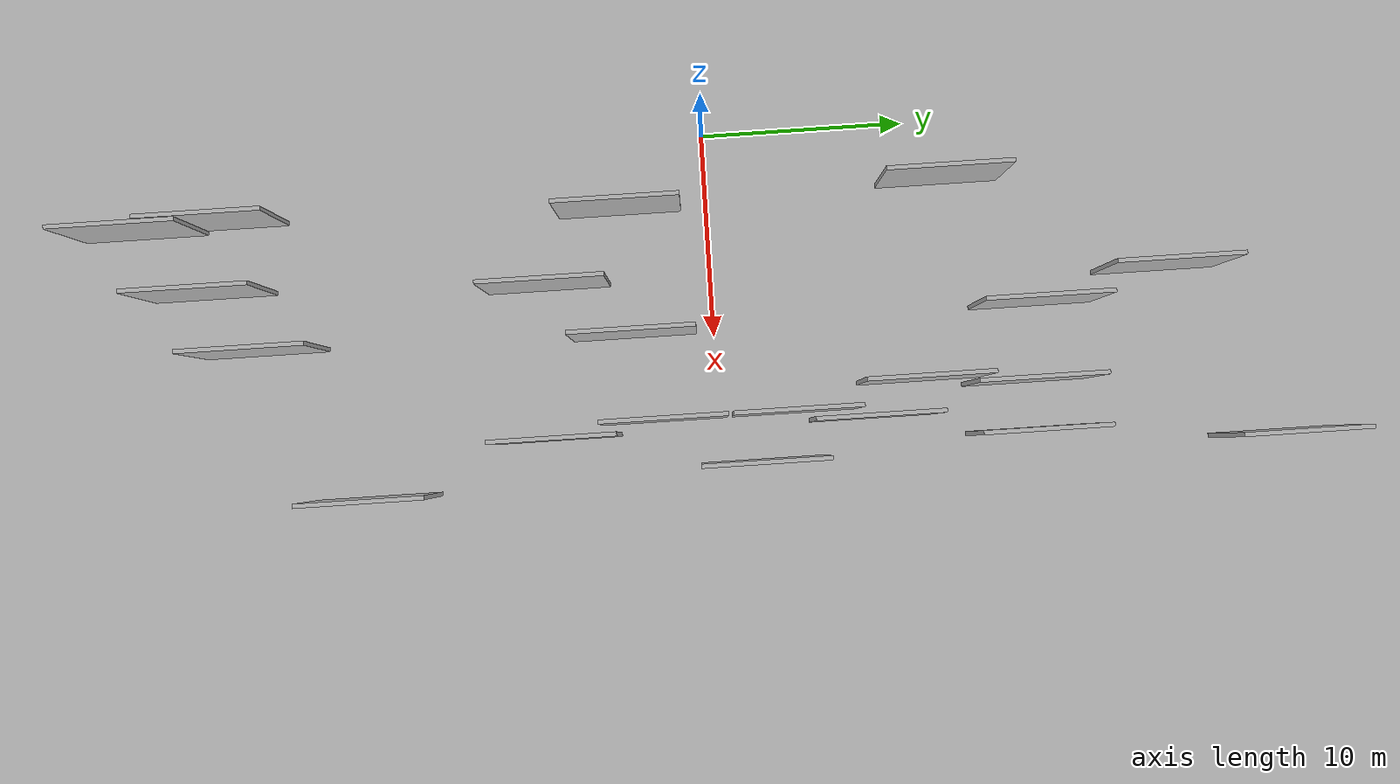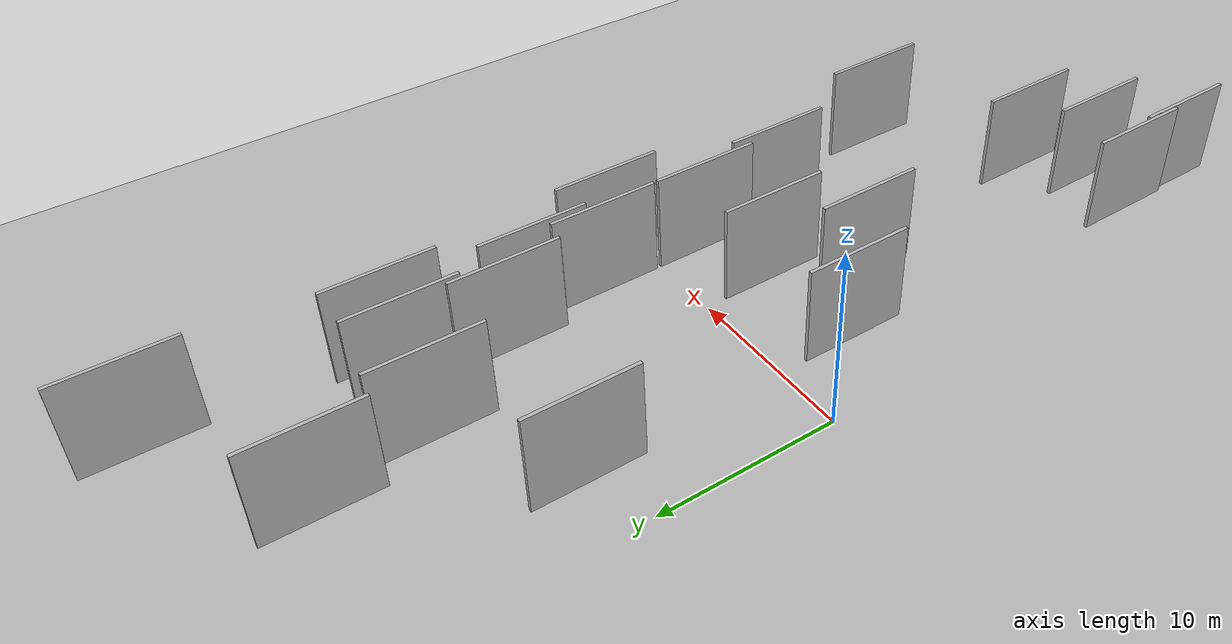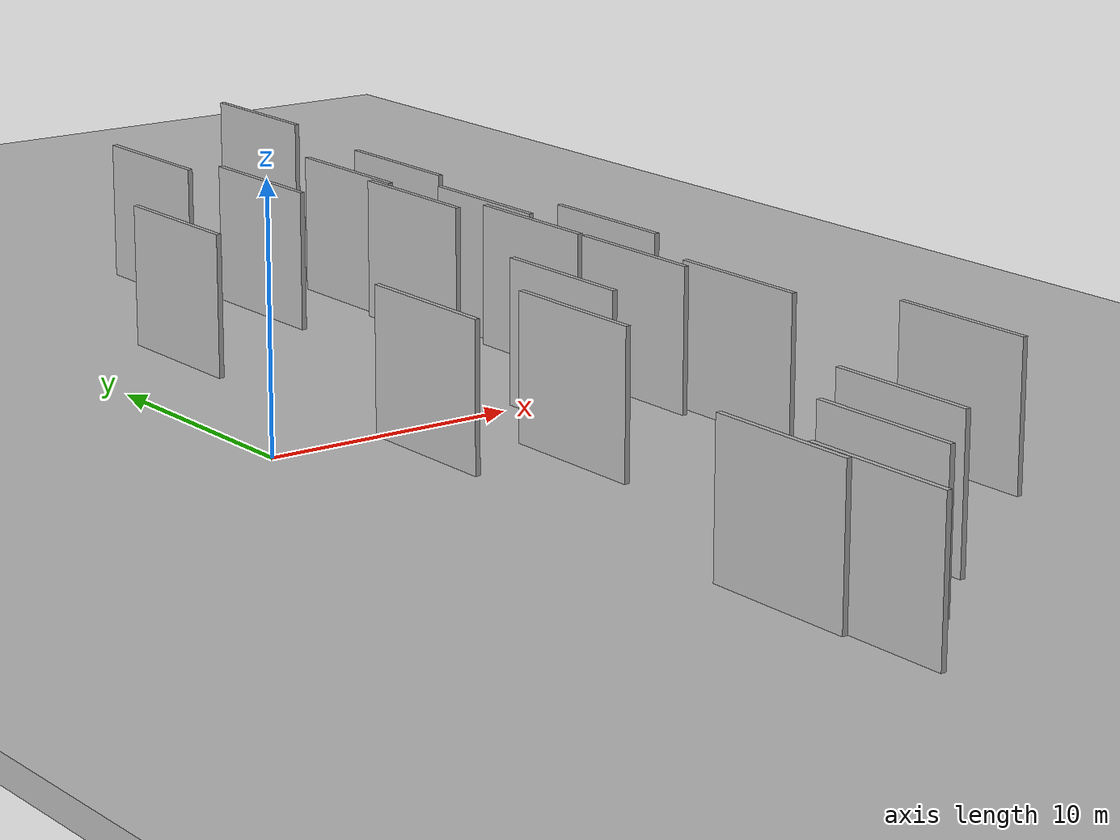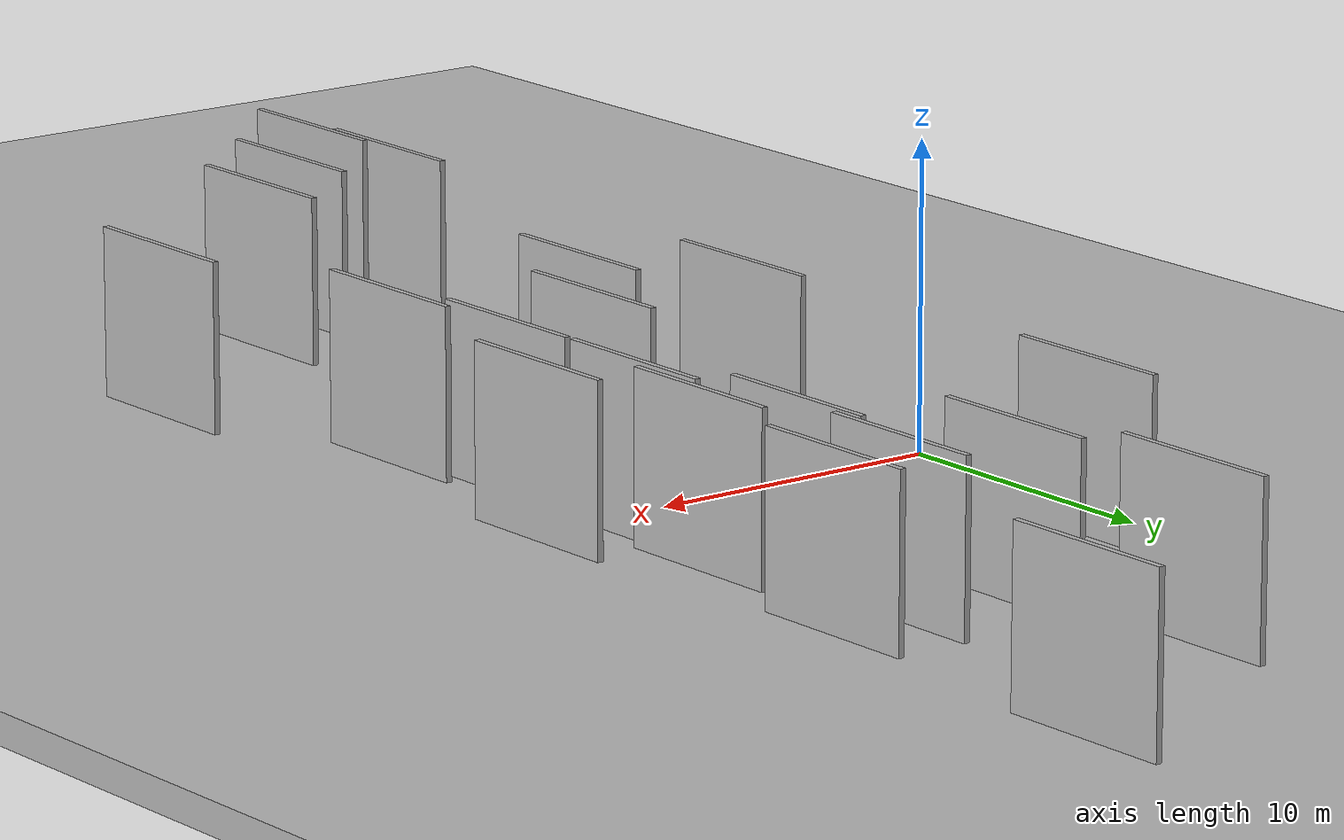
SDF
<?xml version="1.0" encoding="utf-8"?>

<sdf version="1.6">

   <world name="default">

      <gui fullscreen="0">

         <camera name="user_camera">

            <pose>-15 0 4.57585 0 0 0</pose>

            <view_controller>orbit</view_controller>

         </camera>

      </gui>

      <scene>

         <sky>

           <clouds>

             <speed>12</speed>

           </clouds>

         </sky>

         <ambient>0.4 0.4 0.4 1</ambient>

         <background>0.7 0.7 0.7 1</background>

         <shadows>1</shadows>

      </scene>

      <gravity>0 0 -9.8066</gravity>

      <magnetic_field>6e-06 2.3e-05 -4.2e-05</magnetic_field>

      <physics default="0" name="default_physics" type="ode">

         <ode>

            <solver>

               <type>quick</type>

               <iters>10</iters>

               <sor>1.0</sor>

               <use_dynamic_moi_rescaling>0</use_dynamic_moi_rescaling>

            </solver>

            <constraints>

               <cfm>0</cfm>

               <erp>0.2</erp>

               <contact_max_correcting_vel>100</contact_max_correcting_vel>

               <contact_surface_layer>0.001</contact_surface_layer>

            </constraints>

         </ode>

         <max_step_size>0.004</max_step_size>

         <real_time_factor>1</real_time_factor>

         <real_time_update_rate>250</real_time_update_rate>

      </physics>

      <light name="sun" type="directional">

         <cast_shadows>1</cast_shadows>

         <pose>0 0 10 0 0 0</pose>

         <diffuse>0.8 0.8 0.8 1</diffuse>

         <specular>0.2 0.2 0.2 1</specular>

         <attenuation>

            <range>1000</range>

            <constant>0.9</constant>

            <linear>0.01</linear>

            <quadratic>0.001</quadratic>

         </attenuation>

         <direction>-0.5 0.1 -0.9</direction>

      </light>

      <include>

         <name>ground_plane_1</name>

         <uri>model://HANNAS_ground_plane</uri>

         <pose>0 0 0  0 0 0</pose>

      </include>

      <include>

         <name>ground_plane_2</name>

         <uri>model://HANNAS_ground_plane</uri>

         <pose>100 0 0  0 0 0</pose>

      </include>

      <model name="HANNAS_wall_1">

         <static>1</static>

         <pose frame="">3.6434 -4.2358 0.0 0.000000 0.000000 1.570796</pose>

         <link name="link">

            <pose frame="">0 0 3.00 0 0 0</pose>

            <collision name="collision">

               <geometry>

                  <box>

                     <size>6.00 0.2 6.00</size>

                  </box>

               </geometry>

               <max_contacts>10</max_contacts>

               <surface>

                  <contact>

                     <ode/>

                  </contact>

                  <bounce/>

                  <friction>

                     <torsional>

                        <ode/>

                     </torsional>

                     <ode/>

                  </friction>

               </surface>

            </collision>

            <visual name="visual">

               <cast_shadows>0</cast_shadows>

               <geometry>

                  <box>

                     <size>6.00 0.2 6.00</size>

                  </box>

               </geometry>

               <material>

                  <script>

                     <uri>model://HANNAS_wall/materials/scripts</uri>

                     <uri>model://HANNAS_wall/materials/textures</uri>

                     <name>vrc/HANNAS_wall</name>

                  </script>

               </material>

            </visual>

            <self_collide>0</self_collide>

            <enable_wind>0</enable_wind>

            <kinematic>0</kinematic>

         </link>

      </model>

      <model name="HANNAS_wall_2">

         <static>1</static>

         <pose frame="">3.1262 11.4131 0.0 0.000000 0.000000 1.570796</pose>

         <link name="link">

            <pose frame="">0 0 3.00 0 0 0</pose>

            <collision name="collision">

               <geometry>

                  <box>

                     <size>6.00 0.2 6.00</size>

                  </box>

               </geometry>

               <max_contacts>10</max_contacts>

               <surface>

                  <contact>

                     <ode/>

                  </contact>

                  <bounce/>

                  <friction>

                     <torsional>

                        <ode/>

                     </torsional>

                     <ode/>

                  </friction>

               </surface>

            </collision>

            <visual name="visual">

               <cast_shadows>0</cast_shadows>

               <geometry>

                  <box>

                     <size>6.00 0.2 6.00</size>

                  </box>

               </geometry>

               <material>

                  <script>

                     <uri>model://HANNAS_wall/materials/scripts</uri>

                     <uri>model://HANNAS_wall/materials/textures</uri>

                     <name>vrc/HANNAS_wall</name>

                  </script>

               </material>

            </visual>

            <self_collide>0</self_collide>

            <enable_wind>0</enable_wind>

            <kinematic>0</kinematic>

         </link>

      </model>

      <model name="HANNAS_wall_3">

         <static>1</static>

         <pose frame="">13.9325 3.6311 0.0 0.000000 0.000000 1.570796</pose>

         <link name="link">

            <pose frame="">0 0 3.00 0 0 0</pose>

            <collision name="collision">

               <geometry>

                  <box>

                     <size>6.00 0.2 6.00</size>

                  </box>

               </geometry>

               <max_contacts>10</max_contacts>

               <surface>

                  <contact>

                     <ode/>

                  </contact>

                  <bounce/>

                  <friction>

                     <torsional>

                        <ode/>

                     </torsional>

                     <ode/>

                  </friction>

               </surface>

            </collision>

            <visual name="visual">

               <cast_shadows>0</cast_shadows>

               <geometry>

                  <box>

                     <size>6.00 0.2 6.00</size>

                  </box>

               </geometry>

               <material>

                  <script>

                     <uri>model://HANNAS_wall/materials/scripts</uri>

                     <uri>model://HANNAS_wall/materials/textures</uri>

                     <name>vrc/HANNAS_wall</name>

                  </script>

               </material>

            </visual>

            <self_collide>0</self_collide>

            <enable_wind>0</enable_wind>

            <kinematic>0</kinematic>

         </link>

      </model>

      <model name="HANNAS_wall_4">

         <static>1</static>

         <pose frame="">3.3261 -27.5764 0.0 0.000000 0.000000 1.570796</pose>

         <link name="link">

            <pose frame="">0 0 3.00 0 0 0</pose>

            <collision name="collision">

               <geometry>

                  <box>

                     <size>6.00 0.2 6.00</size>

                  </box>

               </geometry>

               <max_contacts>10</max_contacts>

               <surface>

                  <contact>

                     <ode/>

                  </contact>

                  <bounce/>

                  <friction>

                     <torsional>

                        <ode/>

                     </torsional>

                     <ode/>

                  </friction>

               </surface>

            </collision>

            <visual name="visual">

               <cast_shadows>0</cast_shadows>

               <geometry>

                  <box>

                     <size>6.00 0.2 6.00</size>

                  </box>

               </geometry>

               <material>

                  <script>

                     <uri>model://HANNAS_wall/materials/scripts</uri>

                     <uri>model://HANNAS_wall/materials/textures</uri>

                     <name>vrc/HANNAS_wall</name>

                  </script>

               </material>

            </visual>

            <self_collide>0</self_collide>

            <enable_wind>0</enable_wind>

            <kinematic>0</kinematic>

         </link>

      </model>

      <model name="HANNAS_wall_5">

         <static>1</static>

         <pose frame="">16.8456 -16.7078 0.0 0.000000 0.000000 1.570796</pose>

         <link name="link">

            <pose frame="">0 0 3.00 0 0 0</pose>

            <collision name="collision">

               <geometry>

                  <box>

                     <size>6.00 0.2 6.00</size>

                  </box>

               </geometry>

               <max_contacts>10</max_contacts>

               <surface>

                  <contact>

                     <ode/>

                  </contact>

                  <bounce/>

                  <friction>

                     <torsional>

                        <ode/>

                     </torsional>

                     <ode/>

                  </friction>

               </surface>

            </collision>

            <visual name="visual">

               <cast_shadows>0</cast_shadows>

               <geometry>

                  <box>

                     <size>6.00 0.2 6.00</size>

                  </box>

               </geometry>

               <material>

                  <script>

                     <uri>model://HANNAS_wall/materials/scripts</uri>

                     <uri>model://HANNAS_wall/materials/textures</uri>

                     <name>vrc/HANNAS_wall</name>

                  </script>

               </material>

            </visual>

            <self_collide>0</self_collide>

            <enable_wind>0</enable_wind>

            <kinematic>0</kinematic>

         </link>

      </model>

      <model name="HANNAS_wall_6">

         <static>1</static>

         <pose frame="">14.5267 -7.7868 0.0 0.000000 0.000000 1.570796</pose>

         <link name="link">

            <pose frame="">0 0 3.00 0 0 0</pose>

            <collision name="collision">

               <geometry>

                  <box>

                     <size>6.00 0.2 6.00</size>

                  </box>

               </geometry>

               <max_contacts>10</max_contacts>

               <surface>

                  <contact>

                     <ode/>

                  </contact>

                  <bounce/>

                  <friction>

                     <torsional>

                        <ode/>

                     </torsional>

                     <ode/>

                  </friction>

               </surface>

            </collision>

            <visual name="visual">

               <cast_shadows>0</cast_shadows>

               <geometry>

                  <box>

                     <size>6.00 0.2 6.00</size>

                  </box>

               </geometry>

               <material>

                  <script>

                     <uri>model://HANNAS_wall/materials/scripts</uri>

                     <uri>model://HANNAS_wall/materials/textures</uri>

                     <name>vrc/HANNAS_wall</name>

                  </script>

               </material>

            </visual>

            <self_collide>0</self_collide>

            <enable_wind>0</enable_wind>

            <kinematic>0</kinematic>

         </link>

      </model>

      <model name="HANNAS_wall_7">

         <static>1</static>

         <pose frame="">9.4575 -21.8375 0.0 0.000000 0.000000 1.570796</pose>

         <link name="link">

            <pose frame="">0 0 3.00 0 0 0</pose>

            <collision name="collision">

               <geometry>

                  <box>

                     <size>6.00 0.2 6.00</size>

                  </box>

               </geometry>

               <max_contacts>10</max_contacts>

               <surface>

                  <contact>

                     <ode/>

                  </contact>

                  <bounce/>

                  <friction>

                     <torsional>

                        <ode/>

                     </torsional>

                     <ode/>

                  </friction>

               </surface>

            </collision>

            <visual name="visual">

               <cast_shadows>0</cast_shadows>

               <geometry>

                  <box>

                     <size>6.00 0.2 6.00</size>

                  </box>

               </geometry>

               <material>

                  <script>

                     <uri>model://HANNAS_wall/materials/scripts</uri>

                     <uri>model://HANNAS_wall/materials/textures</uri>

                     <name>vrc/HANNAS_wall</name>

                  </script>

               </material>

            </visual>

            <self_collide>0</self_collide>

            <enable_wind>0</enable_wind>

            <kinematic>0</kinematic>

         </link>

      </model>

      <model name="HANNAS_wall_8">

         <static>1</static>

         <pose frame="">13.9377 -2.6072 0.0 0.000000 0.000000 1.570796</pose>

         <link name="link">

            <pose frame="">0 0 3.00 0 0 0</pose>

            <collision name="collision">

               <geometry>

                  <box>

                     <size>6.00 0.2 6.00</size>

                  </box>

               </geometry>

               <max_contacts>10</max_contacts>

               <surface>

                  <contact>

                     <ode/>

                  </contact>

                  <bounce/>

                  <friction>

                     <torsional>

                        <ode/>

                     </torsional>

                     <ode/>

                  </friction>

               </surface>

            </collision>

            <visual name="visual">

               <cast_shadows>0</cast_shadows>

               <geometry>

                  <box>

                     <size>6.00 0.2 6.00</size>

                  </box>

               </geometry>

               <material>

                  <script>

                     <uri>model://HANNAS_wall/materials/scripts</uri>

                     <uri>model://HANNAS_wall/materials/textures</uri>

                     <name>vrc/HANNAS_wall</name>

                  </script>

               </material>

            </visual>

            <self_collide>0</self_collide>

            <enable_wind>0</enable_wind>

            <kinematic>0</kinematic>

         </link>

      </model>

      <model name="HANNAS_wall_9">

         <static>1</static>

         <pose frame="">7.1594 -7.9296 0.0 0.000000 0.000000 1.570796</pose>

         <link name="link">

            <pose frame="">0 0 3.00 0 0 0</pose>

            <collision name="collision">

               <geometry>

                  <box>

                     <size>6.00 0.2 6.00</size>

                  </box>

               </geometry>

               <max_contacts>10</max_contacts>

               <surface>

                  <contact>

                     <ode/>

                  </contact>

                  <bounce/>

                  <friction>

                     <torsional>

                        <ode/>

                     </torsional>

                     <ode/>

                  </friction>

               </surface>

            </collision>

            <visual name="visual">

               <cast_shadows>0</cast_shadows>

               <geometry>

                  <box>

                     <size>6.00 0.2 6.00</size>

                  </box>

               </geometry>

               <material>

                  <script>

                     <uri>model://HANNAS_wall/materials/scripts</uri>

                     <uri>model://HANNAS_wall/materials/textures</uri>

                     <name>vrc/HANNAS_wall</name>

                  </script>

               </material>

            </visual>

            <self_collide>0</self_collide>

            <enable_wind>0</enable_wind>

            <kinematic>0</kinematic>

         </link>

      </model>

      <model name="HANNAS_wall_10">

         <static>1</static>

         <pose frame="">9.7541 -3.8514 0.0 0.000000 0.000000 1.570796</pose>

         <link name="link">

            <pose frame="">0 0 3.00 0 0 0</pose>

            <collision name="collision">

               <geometry>

                  <box>

                     <size>6.00 0.2 6.00</size>

                  </box>

               </geometry>

               <max_contacts>10</max_contacts>

               <surface>

                  <contact>

                     <ode/>

                  </contact>

                  <bounce/>

                  <friction>

                     <torsional>

                        <ode/>

                     </torsional>

                     <ode/>

                  </friction>

               </surface>

            </collision>

            <visual name="visual">

               <cast_shadows>0</cast_shadows>

               <geometry>

                  <box>

                     <size>6.00 0.2 6.00</size>

                  </box>

               </geometry>

               <material>

                  <script>

                     <uri>model://HANNAS_wall/materials/scripts</uri>

                     <uri>model://HANNAS_wall/materials/textures</uri>

                     <name>vrc/HANNAS_wall</name>

                  </script>

               </material>

            </visual>

            <self_collide>0</self_collide>

            <enable_wind>0</enable_wind>

            <kinematic>0</kinematic>

         </link>

      </model>

      <model name="HANNAS_wall_11">

         <static>1</static>

         <pose frame="">12.7835 9.8037 0.0 0.000000 0.000000 1.570796</pose>

         <link name="link">

            <pose frame="">0 0 3.00 0 0 0</pose>

            <collision name="collision">

               <geometry>

                  <box>

                     <size>6.00 0.2 6.00</size>

                  </box>

               </geometry>

               <max_contacts>10</max_contacts>

               <surface>

                  <contact>

                     <ode/>

                  </contact>

                  <bounce/>

                  <friction>

                     <torsional>

                        <ode/>

                     </torsional>

                     <ode/>

                  </friction>

               </surface>

            </collision>

            <visual name="visual">

               <cast_shadows>0</cast_shadows>

               <geometry>

                  <box>

                     <size>6.00 0.2 6.00</size>

                  </box>

               </geometry>

               <material>

                  <script>

                     <uri>model://HANNAS_wall/materials/scripts</uri>

                     <uri>model://HANNAS_wall/materials/textures</uri>

                     <name>vrc/HANNAS_wall</name>

                  </script>

               </material>

            </visual>

            <self_collide>0</self_collide>

            <enable_wind>0</enable_wind>

            <kinematic>0</kinematic>

         </link>

      </model>

      <model name="HANNAS_wall_12">

         <static>1</static>

         <pose frame="">3.0962 -23.5766 0.0 0.000000 0.000000 1.570796</pose>

         <link name="link">

            <pose frame="">0 0 3.00 0 0 0</pose>

            <collision name="collision">

               <geometry>

                  <box>

                     <size>6.00 0.2 6.00</size>

                  </box>

               </geometry>

               <max_contacts>10</max_contacts>

               <surface>

                  <contact>

                     <ode/>

                  </contact>

                  <bounce/>

                  <friction>

                     <torsional>

                        <ode/>

                     </torsional>

                     <ode/>

                  </friction>

               </surface>

            </collision>

            <visual name="visual">

               <cast_shadows>0</cast_shadows>

               <geometry>

                  <box>

                     <size>6.00 0.2 6.00</size>

                  </box>

               </geometry>

               <material>

                  <script>

                     <uri>model://HANNAS_wall/materials/scripts</uri>

                     <uri>model://HANNAS_wall/materials/textures</uri>

                     <name>vrc/HANNAS_wall</name>

                  </script>

               </material>

            </visual>

            <self_collide>0</self_collide>

            <enable_wind>0</enable_wind>

            <kinematic>0</kinematic>

         </link>

      </model>

      <model name="HANNAS_wall_13">

         <static>1</static>

         <pose frame="">9.4488 15.5420 0.0 0.000000 0.000000 1.570796</pose>

         <link name="link">

            <pose frame="">0 0 3.00 0 0 0</pose>

            <collision name="collision">

               <geometry>

                  <box>

                     <size>6.00 0.2 6.00</size>

                  </box>

               </geometry>

               <max_contacts>10</max_contacts>

               <surface>

                  <contact>

                     <ode/>

                  </contact>

                  <bounce/>

                  <friction>

                     <torsional>

                        <ode/>

                     </torsional>

                     <ode/>

                  </friction>

               </surface>

            </collision>

            <visual name="visual">

               <cast_shadows>0</cast_shadows>

               <geometry>

                  <box>

                     <size>6.00 0.2 6.00</size>

                  </box>

               </geometry>

               <material>

                  <script>

                     <uri>model://HANNAS_wall/materials/scripts</uri>

                     <uri>model://HANNAS_wall/materials/textures</uri>

                     <name>vrc/HANNAS_wall</name>

                  </script>

               </material>

            </visual>

            <self_collide>0</self_collide>

            <enable_wind>0</enable_wind>

            <kinematic>0</kinematic>

         </link>

      </model>

      <model name="HANNAS_wall_14">

         <static>1</static>

         <pose frame="">14.4347 7.3577 0.0 0.000000 0.000000 1.570796</pose>

         <link name="link">

            <pose frame="">0 0 3.00 0 0 0</pose>

            <collision name="collision">

               <geometry>

                  <box>

                     <size>6.00 0.2 6.00</size>

                  </box>

               </geometry>

               <max_contacts>10</max_contacts>

               <surface>

                  <contact>

                     <ode/>

                  </contact>

                  <bounce/>

                  <friction>

                     <torsional>

                        <ode/>

                     </torsional>

                     <ode/>

                  </friction>

               </surface>

            </collision>

            <visual name="visual">

               <cast_shadows>0</cast_shadows>

               <geometry>

                  <box>

                     <size>6.00 0.2 6.00</size>

                  </box>

               </geometry>

               <material>

                  <script>

                     <uri>model://HANNAS_wall/materials/scripts</uri>

                     <uri>model://HANNAS_wall/materials/textures</uri>

                     <name>vrc/HANNAS_wall</name>

                  </script>

               </material>

            </visual>

            <self_collide>0</self_collide>

            <enable_wind>0</enable_wind>

            <kinematic>0</kinematic>

         </link>

      </model>

      <model name="HANNAS_wall_15">

         <static>1</static>

         <pose frame="">8.1083 21.6999 0.0 0.000000 0.000000 1.570796</pose>

         <link name="link">

            <pose frame="">0 0 3.00 0 0 0</pose>

            <collision name="collision">

               <geometry>

                  <box>

                     <size>6.00 0.2 6.00</size>

                  </box>

               </geometry>

               <max_contacts>10</max_contacts>

               <surface>

                  <contact>

                     <ode/>

                  </contact>

                  <bounce/>

                  <friction>

                     <torsional>

                        <ode/>

                     </torsional>

                     <ode/>

                  </friction>

               </surface>

            </collision>

            <visual name="visual">

               <cast_shadows>0</cast_shadows>

               <geometry>

                  <box>

                     <size>6.00 0.2 6.00</size>

                  </box>

               </geometry>

               <material>

                  <script>

                     <uri>model://HANNAS_wall/materials/scripts</uri>

                     <uri>model://HANNAS_wall/materials/textures</uri>

                     <name>vrc/HANNAS_wall</name>

                  </script>

               </material>

            </visual>

            <self_collide>0</self_collide>

            <enable_wind>0</enable_wind>

            <kinematic>0</kinematic>

         </link>

      </model>

      <model name="HANNAS_wall_16">

         <static>1</static>

         <pose frame="">6.5130 -24.2973 0.0 0.000000 0.000000 1.570796</pose>

         <link name="link">

            <pose frame="">0 0 3.00 0 0 0</pose>

            <collision name="collision">

               <geometry>

                  <box>

                     <size>6.00 0.2 6.00</size>

                  </box>

               </geometry>

               <max_contacts>10</max_contacts>

               <surface>

                  <contact>

                     <ode/>

                  </contact>

                  <bounce/>

                  <friction>

                     <torsional>

                        <ode/>

                     </torsional>

                     <ode/>

                  </friction>

               </surface>

            </collision>

            <visual name="visual">

               <cast_shadows>0</cast_shadows>

               <geometry>

                  <box>

                     <size>6.00 0.2 6.00</size>

                  </box>

               </geometry>

               <material>

                  <script>

                     <uri>model://HANNAS_wall/materials/scripts</uri>

                     <uri>model://HANNAS_wall/materials/textures</uri>

                     <name>vrc/HANNAS_wall</name>

                  </script>

               </material>

            </visual>

            <self_collide>0</self_collide>

            <enable_wind>0</enable_wind>

            <kinematic>0</kinematic>

         </link>

      </model>

      <model name="HANNAS_wall_17">

         <static>1</static>

         <pose frame="">13.1801 14.9407 0.0 0.000000 0.000000 1.570796</pose>

         <link name="link">

            <pose frame="">0 0 3.00 0 0 0</pose>

            <collision name="collision">

               <geometry>

                  <box>

                     <size>6.00 0.2 6.00</size>

                  </box>

               </geometry>

               <max_contacts>10</max_contacts>

               <surface>

                  <contact>

                     <ode/>

                  </contact>

                  <bounce/>

                  <friction>

                     <torsional>

                        <ode/>

                     </torsional>

                     <ode/>

                  </friction>

               </surface>

            </collision>

            <visual name="visual">

               <cast_shadows>0</cast_shadows>

               <geometry>

                  <box>

                     <size>6.00 0.2 6.00</size>

                  </box>

               </geometry>

               <material>

                  <script>

                     <uri>model://HANNAS_wall/materials/scripts</uri>

                     <uri>model://HANNAS_wall/materials/textures</uri>

                     <name>vrc/HANNAS_wall</name>

                  </script>

               </material>

            </visual>

            <self_collide>0</self_collide>

            <enable_wind>0</enable_wind>

            <kinematic>0</kinematic>

         </link>

      </model>

      <model name="HANNAS_wall_18">

         <static>1</static>

         <pose frame="">15.5766 14.9422 0.0 0.000000 0.000000 1.570796</pose>

         <link name="link">

            <pose frame="">0 0 3.00 0 0 0</pose>

            <collision name="collision">

               <geometry>

                  <box>

                     <size>6.00 0.2 6.00</size>

                  </box>

               </geometry>

               <max_contacts>10</max_contacts>

               <surface>

                  <contact>

                     <ode/>

                  </contact>

                  <bounce/>

                  <friction>

                     <torsional>

                        <ode/>

                     </torsional>

                     <ode/>

                  </friction>

               </surface>

            </collision>

            <visual name="visual">

               <cast_shadows>0</cast_shadows>

               <geometry>

                  <box>

                     <size>6.00 0.2 6.00</size>

                  </box>

               </geometry>

               <material>

                  <script>

                     <uri>model://HANNAS_wall/materials/scripts</uri>

                     <uri>model://HANNAS_wall/materials/textures</uri>

                     <name>vrc/HANNAS_wall</name>

                  </script>

               </material>

            </visual>

            <self_collide>0</self_collide>

            <enable_wind>0</enable_wind>

            <kinematic>0</kinematic>

         </link>

      </model>

      <model name="HANNAS_wall_19">

         <static>1</static>

         <pose frame="">16.2564 2.0011 0.0 0.000000 0.000000 1.570796</pose>

         <link name="link">

            <pose frame="">0 0 3.00 0 0 0</pose>

            <collision name="collision">

               <geometry>

                  <box>

                     <size>6.00 0.2 6.00</size>

                  </box>

               </geometry>

               <max_contacts>10</max_contacts>

               <surface>

                  <contact>

                     <ode/>

                  </contact>

                  <bounce/>

                  <friction>

                     <torsional>

                        <ode/>

                     </torsional>

                     <ode/>

                  </friction>

               </surface>

            </collision>

            <visual name="visual">

               <cast_shadows>0</cast_shadows>

               <geometry>

                  <box>

                     <size>6.00 0.2 6.00</size>

                  </box>

               </geometry>

               <material>

                  <script>

                     <uri>model://HANNAS_wall/materials/scripts</uri>

                     <uri>model://HANNAS_wall/materials/textures</uri>

                     <name>vrc/HANNAS_wall</name>

                  </script>

               </material>

            </visual>

            <self_collide>0</self_collide>

            <enable_wind>0</enable_wind>

            <kinematic>0</kinematic>

         </link>

      </model>

      <model name="HANNAS_wall_20">

         <static>1</static>

         <pose frame="">16.4369 26.7785 0.0 0.000000 0.000000 1.570796</pose>

         <link name="link">

            <pose frame="">0 0 3.00 0 0 0</pose>

            <collision name="collision">

               <geometry>

                  <box>

                     <size>6.00 0.2 6.00</size>

                  </box>

               </geometry>

               <max_contacts>10</max_contacts>

               <surface>

                  <contact>

                     <ode/>

                  </contact>

                  <bounce/>

                  <friction>

                     <torsional>

                        <ode/>

                     </torsional>

                     <ode/>

                  </friction>

               </surface>

            </collision>

            <visual name="visual">

               <cast_shadows>0</cast_shadows>

               <geometry>

                  <box>

                     <size>6.00 0.2 6.00</size>

                  </box>

               </geometry>

               <material>

                  <script>

                     <uri>model://HANNAS_wall/materials/scripts</uri>

                     <uri>model://HANNAS_wall/materials/textures</uri>

                     <name>vrc/HANNAS_wall</name>

                  </script>

               </material>

            </visual>

            <self_collide>0</self_collide>

            <enable_wind>0</enable_wind>

            <kinematic>0</kinematic>

         </link>

      </model>

   </world>

</sdf>

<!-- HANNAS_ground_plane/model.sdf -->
<sdf version="1.4">
<model name="HANNAS_ground_plane">
  <static>true</static>
    <link name="link">
      <collision name="collision">
        <geometry>
          <plane>
            <normal>0 0 1</normal>
            <size>1000 1000</size>
          </plane>
        </geometry>
        <surface>
          <friction>
            <ode>
              <mu>100</mu>
              <mu2>50</mu2>
            </ode>
          </friction>
        </surface>
      </collision>
      <visual name="visual">
        <cast_shadows>false</cast_shadows>
        <geometry>
          <plane>
            <normal>0 0 1</normal>
            <size>1000 1000</size>
          </plane>
        </geometry>
        <material>
          <script>
            <uri>model://HANNAS_ground_plane/materials/scripts/HANNAS_ground_plane.material</uri>
	    <uri>model://HANNAS_ground_plane/materials/textures</uri>
            <name>HANNASGroundPlane/Image</name>
          </script>
        </material>
      </visual>
    </link>
  </model>
</sdf>
